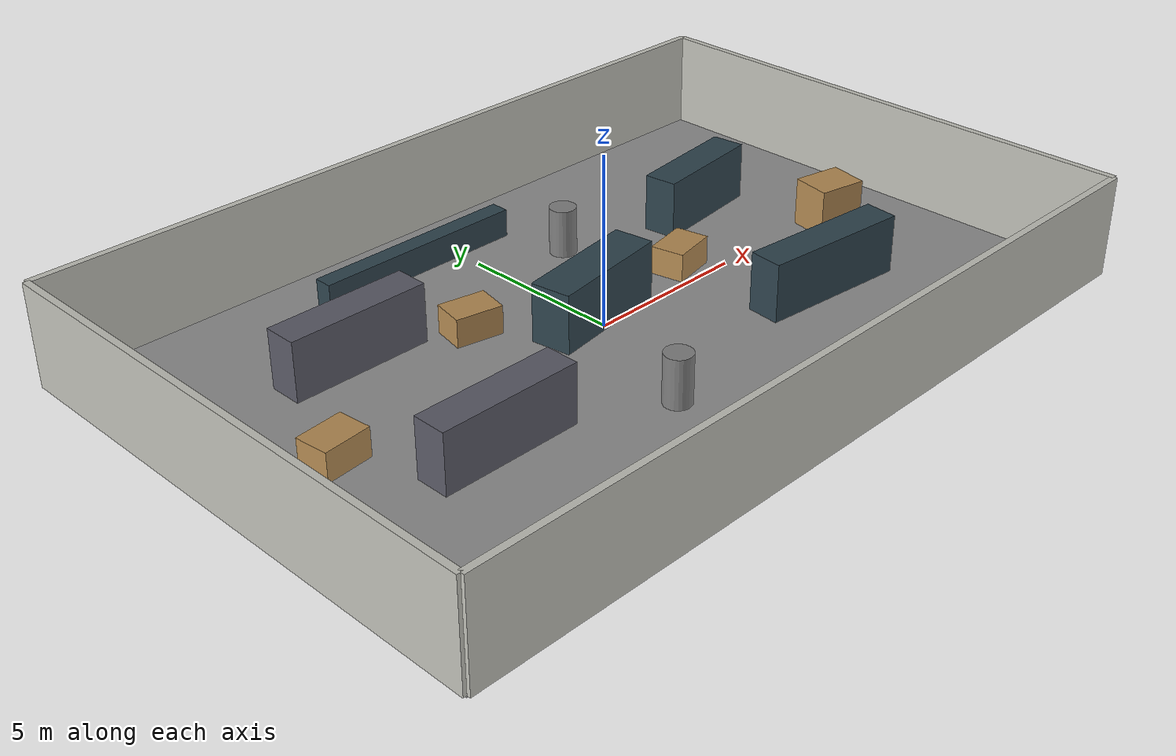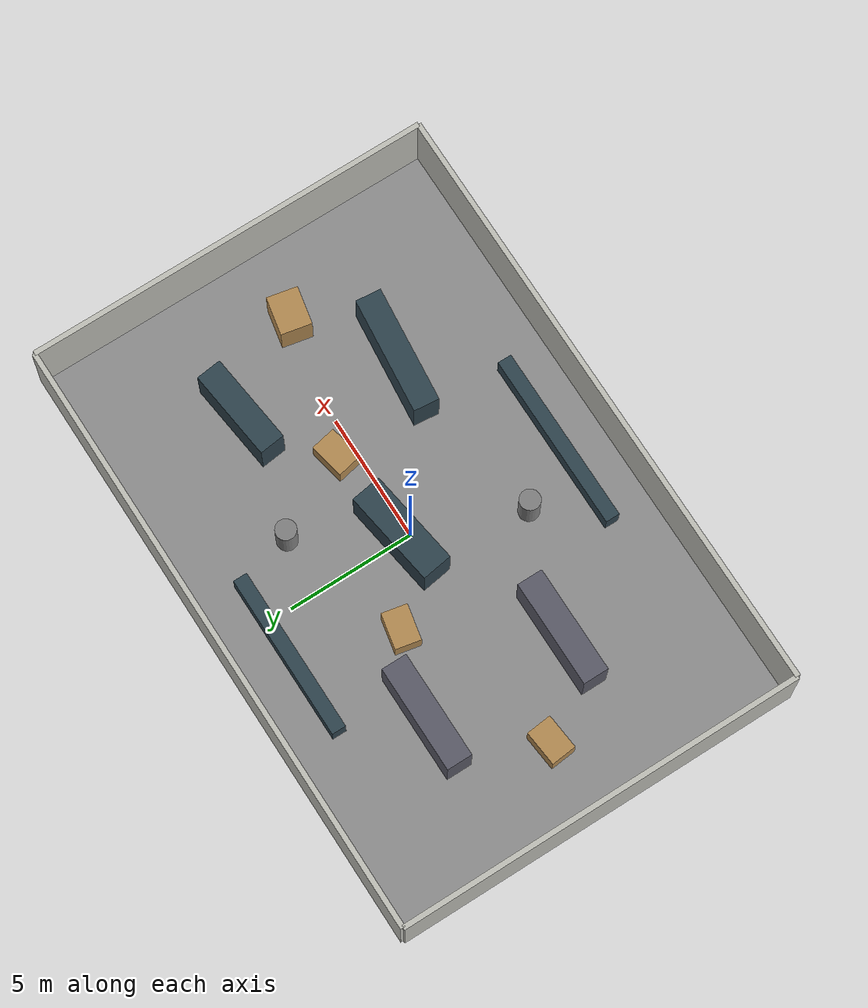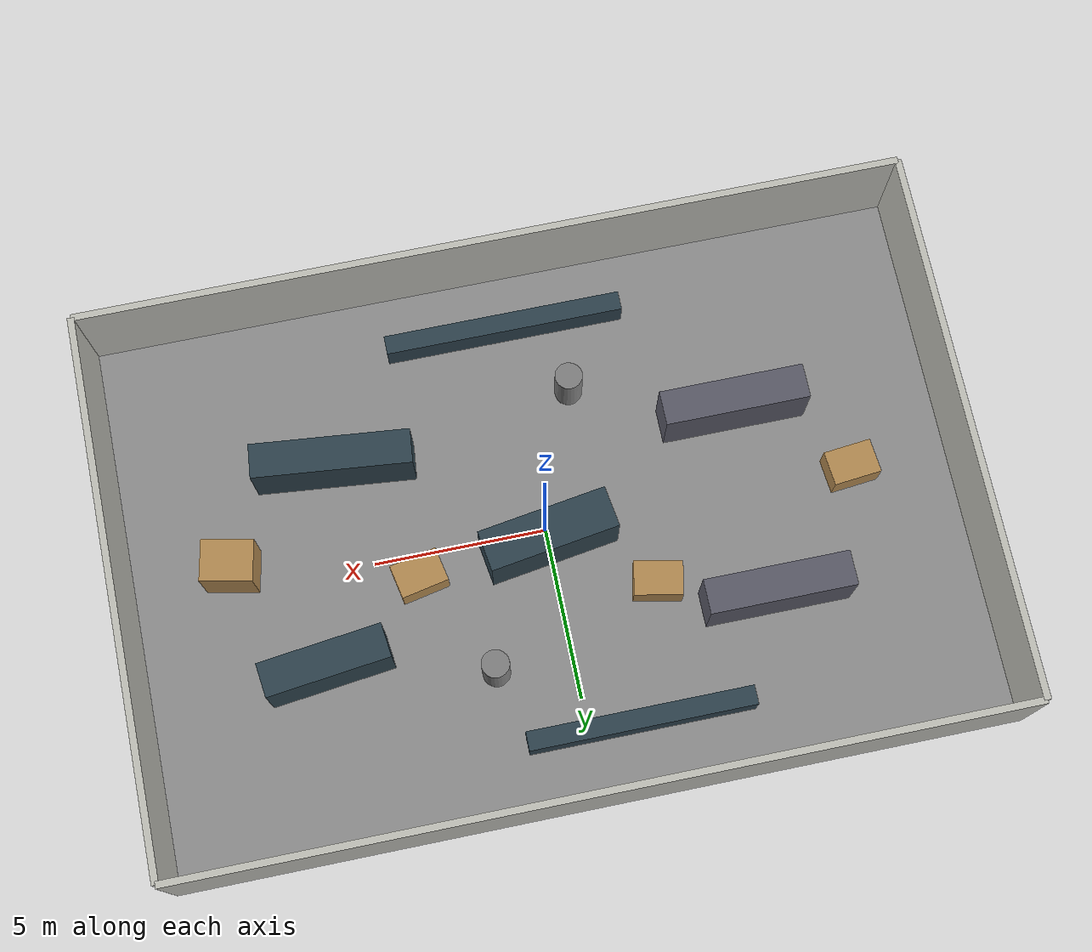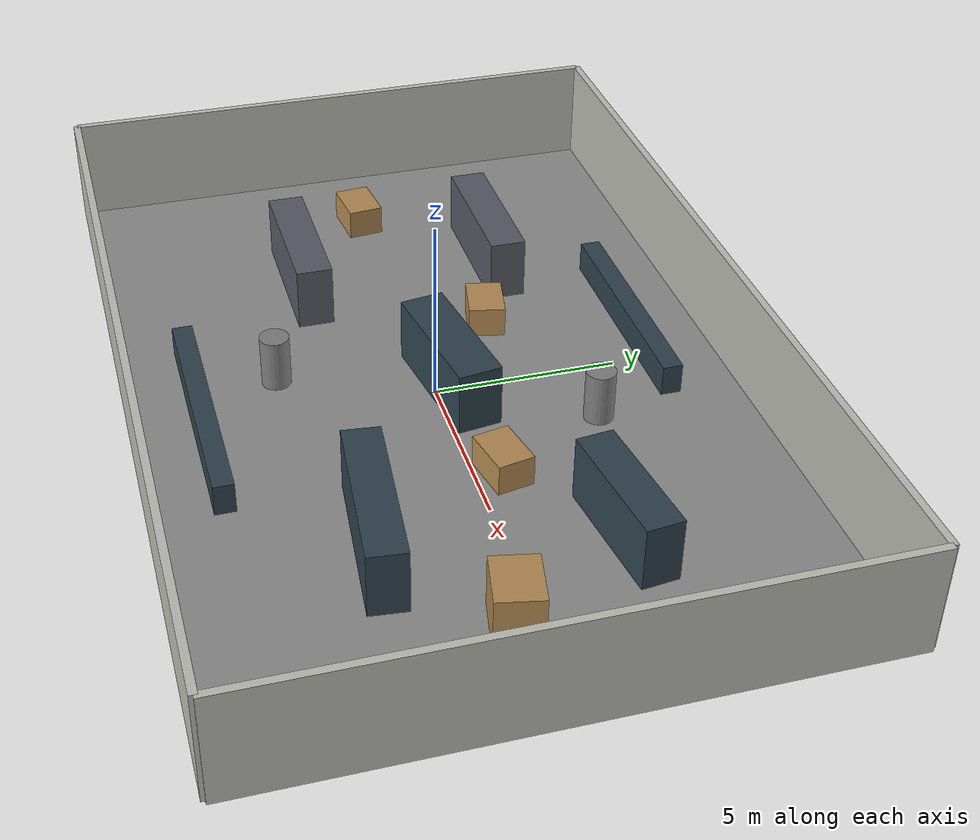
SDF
<?xml version="1.0" ?>
<sdf version="1.9">
  <world name="warehouse">
    <physics name="1ms" type="ode">
      <max_step_size>0.004</max_step_size>
      <real_time_factor>1.0</real_time_factor>
      <real_time_update_rate>250</real_time_update_rate>
    </physics>
    <gravity>0 0 -9.8</gravity>
    <magnetic_field>6e-06 2.3e-05 -4.2e-05</magnetic_field>
    <atmosphere type="adiabatic"/>

    <scene>
      <grid>false</grid>
      <ambient>0.4 0.4 0.4 1</ambient>
      <background>0.7 0.7 0.7 1</background>
      <shadows>true</shadows>
    </scene>

    <plugin
      filename="gz-sim-physics-system"
      name="gz::sim::systems::Physics">
    </plugin>
    <plugin
      filename="gz-sim-user-commands-system"
      name="gz::sim::systems::UserCommands">
    </plugin>
    <plugin
      filename="gz-sim-scene-broadcaster-system"
      name="gz::sim::systems::SceneBroadcaster">
    </plugin>
    <plugin
      filename="gz-sim-sensors-system"
      name="gz::sim::systems::Sensors">
      <render_engine>ogre2</render_engine>
    </plugin>

    <light name="sun" type="directional">
      <cast_shadows>true</cast_shadows>
      <pose>0 0 10 0 0 0</pose>
      <diffuse>0.8 0.8 0.75 1</diffuse>
      <specular>0.2 0.2 0.2 1</specular>
      <attenuation>
        <range>1000</range>
        <constant>0.9</constant>
        <linear>0.01</linear>
        <quadratic>0.001</quadratic>
      </attenuation>
      <direction>-0.5 0.2 -1</direction>
    </light>

    <spherical_coordinates>
      <surface_model>EARTH_WGS84</surface_model>
      <world_frame_orientation>ENU</world_frame_orientation>
      <latitude_deg>47.397971057728974</latitude_deg>
      <longitude_deg>8.546163739800146</longitude_deg>
      <elevation>0</elevation>
    </spherical_coordinates>

    <model name="warehouse_floor">
      <static>true</static>
      <link name="floor_link">
        <collision name="collision">
          <geometry>
            <box>
              <size>24 16 0.1</size>
            </box>
          </geometry>
        </collision>
        <visual name="visual">
          <geometry>
            <box>
              <size>24 16 0.1</size>
            </box>
          </geometry>
          <material>
            <ambient>0.45 0.45 0.45 1</ambient>
            <diffuse>0.55 0.55 0.55 1</diffuse>
          </material>
        </visual>
      </link>
    </model>

    <model name="north_wall">
      <static>true</static>
      <pose>0 8 1.5 0 0 0</pose>
      <link name="wall_link">
        <collision name="collision">
          <geometry>
            <box>
              <size>24 0.2 3</size>
            </box>
          </geometry>
        </collision>
        <visual name="visual">
          <geometry>
            <box>
              <size>24 0.2 3</size>
            </box>
          </geometry>
          <material>
            <ambient>0.65 0.65 0.62 1</ambient>
            <diffuse>0.75 0.75 0.72 1</diffuse>
          </material>
        </visual>
      </link>
    </model>

    <model name="south_wall">
      <static>true</static>
      <pose>0 -8 1.5 0 0 0</pose>
      <link name="wall_link">
        <collision name="collision">
          <geometry>
            <box>
              <size>24 0.2 3</size>
            </box>
          </geometry>
        </collision>
        <visual name="visual">
          <geometry>
            <box>
              <size>24 0.2 3</size>
            </box>
          </geometry>
          <material>
            <ambient>0.65 0.65 0.62 1</ambient>
            <diffuse>0.75 0.75 0.72 1</diffuse>
          </material>
        </visual>
      </link>
    </model>

    <model name="east_wall">
      <static>true</static>
      <pose>12 0 1.5 0 0 0</pose>
      <link name="wall_link">
        <collision name="collision">
          <geometry>
            <box>
              <size>0.2 16 3</size>
            </box>
          </geometry>
        </collision>
        <visual name="visual">
          <geometry>
            <box>
              <size>0.2 16 3</size>
            </box>
          </geometry>
          <material>
            <ambient>0.65 0.65 0.62 1</ambient>
            <diffuse>0.75 0.75 0.72 1</diffuse>
          </material>
        </visual>
      </link>
    </model>

    <model name="west_wall">
      <static>true</static>
      <pose>-12 0 1.5 0 0 0</pose>
      <link name="wall_link">
        <collision name="collision">
          <geometry>
            <box>
              <size>0.2 16 3</size>
            </box>
          </geometry>
        </collision>
        <visual name="visual">
          <geometry>
            <box>
              <size>0.2 16 3</size>
            </box>
          </geometry>
          <material>
            <ambient>0.65 0.65 0.62 1</ambient>
            <diffuse>0.75 0.75 0.72 1</diffuse>
          </material>
        </visual>
      </link>
    </model>

    <model name="shelf_left_rear">
      <static>true</static>
      <pose>-6 3.2 0.9 0 0 0</pose>
      <link name="shelf_link">
        <collision name="collision">
          <geometry>
            <box>
              <size>4.2 1.0 1.8</size>
            </box>
          </geometry>
        </collision>
        <visual name="visual">
          <geometry>
            <box>
              <size>4.2 1.0 1.8</size>
            </box>
          </geometry>
          <material>
            <ambient>0.25 0.25 0.28 1</ambient>
            <diffuse>0.35 0.35 0.40 1</diffuse>
          </material>
        </visual>
      </link>
    </model>

    <model name="shelf_left_front">
      <static>true</static>
      <pose>-6 -2.4 0.9 0 0 0</pose>
      <link name="shelf_link">
        <collision name="collision">
          <geometry>
            <box>
              <size>4.2 1.0 1.8</size>
            </box>
          </geometry>
        </collision>
        <visual name="visual">
          <geometry>
            <box>
              <size>4.2 1.0 1.8</size>
            </box>
          </geometry>
          <material>
            <ambient>0.25 0.25 0.28 1</ambient>
            <diffuse>0.35 0.35 0.40 1</diffuse>
          </material>
        </visual>
      </link>
    </model>

    <model name="round_column_a">
      <static>true</static>
      <pose>-1.5 -4.0 0.75 0 0 0</pose>
      <link name="pillar_link">
        <collision name="collision">
          <geometry>
            <cylinder>
              <radius>0.4</radius>
              <length>1.5</length>
            </cylinder>
          </geometry>
        </collision>
        <visual name="visual">
          <geometry>
            <cylinder>
              <radius>0.4</radius>
              <length>1.5</length>
            </cylinder>
          </geometry>
          <material>
            <ambient>0.40 0.40 0.40 1</ambient>
            <diffuse>0.50 0.50 0.50 1</diffuse>
          </material>
        </visual>
      </link>
    </model>

    <model name="round_column_b">
      <static>true</static>
      <pose>2.2 3.8 0.75 0 0 0</pose>
      <link name="pillar_link">
        <collision name="collision">
          <geometry>
            <cylinder>
              <radius>0.4</radius>
              <length>1.5</length>
            </cylinder>
          </geometry>
        </collision>
        <visual name="visual">
          <geometry>
            <cylinder>
              <radius>0.4</radius>
              <length>1.5</length>
            </cylinder>
          </geometry>
          <material>
            <ambient>0.40 0.40 0.40 1</ambient>
            <diffuse>0.50 0.50 0.50 1</diffuse>
          </material>
        </visual>
      </link>
    </model>

    <model name="goal_marker">
      <static>true</static>
      <pose>10 -6 0.02 0 0 0</pose>
      <link name="marker_link">
        <visual name="visual">
          <geometry>
            <cylinder>
              <radius>0.4</radius>
              <length>0.03</length>
            </cylinder>
          </geometry>
          <material>
            <ambient>0.9 0.1 0.1 1</ambient>
            <diffuse>1.0 0.2 0.2 1</diffuse>
          </material>
        </visual>
      </link>
    </model>

    <model name="shelf_center">
      <static>true</static>
      <pose>0 0.4 0.9 0 0 0.15</pose>
      <link name="rack_link">
        <collision name="collision">
          <geometry>
            <box>
              <size>3.8 1.2 1.8</size>
            </box>
          </geometry>
        </collision>
        <visual name="visual">
          <geometry>
            <box>
              <size>3.8 1.2 1.8</size>
            </box>
          </geometry>
          <material>
            <ambient>0.12 0.18 0.22 1</ambient>
            <diffuse>0.18 0.26 0.30 1</diffuse>
          </material>
        </visual>
      </link>
    </model>

    <model name="shelf_right_front">
      <static>true</static>
      <pose>5.6 -3.0 0.9 0 0 -0.1</pose>
      <link name="rack_link">
        <collision name="collision">
          <geometry>
            <box>
              <size>4.6 1.0 1.8</size>
            </box>
          </geometry>
        </collision>
        <visual name="visual">
          <geometry>
            <box>
              <size>4.6 1.0 1.8</size>
            </box>
          </geometry>
          <material>
            <ambient>0.12 0.18 0.22 1</ambient>
            <diffuse>0.18 0.26 0.30 1</diffuse>
          </material>
        </visual>
      </link>
    </model>

    <model name="shelf_right_rear">
      <static>true</static>
      <pose>6.8 2.8 0.9 0 0 0.12</pose>
      <link name="rack_link">
        <collision name="collision">
          <geometry>
            <box>
              <size>3.6 1.0 1.8</size>
            </box>
          </geometry>
        </collision>
        <visual name="visual">
          <geometry>
            <box>
              <size>3.6 1.0 1.8</size>
            </box>
          </geometry>
          <material>
            <ambient>0.12 0.18 0.22 1</ambient>
            <diffuse>0.18 0.26 0.30 1</diffuse>
          </material>
        </visual>
      </link>
    </model>

    <model name="long_barrier_front">
      <static>true</static>
      <pose>0 -6.2 0.45 0 0 0</pose>
      <link name="rack_link">
        <collision name="collision">
          <geometry>
            <box>
              <size>7.0 0.55 0.9</size>
            </box>
          </geometry>
        </collision>
        <visual name="visual">
          <geometry>
            <box>
              <size>7.0 0.55 0.9</size>
            </box>
          </geometry>
          <material>
            <ambient>0.12 0.18 0.22 1</ambient>
            <diffuse>0.18 0.26 0.30 1</diffuse>
          </material>
        </visual>
      </link>
    </model>

    <model name="long_barrier_rear">
      <static>true</static>
      <pose>-1.5 6.0 0.45 0 0 0</pose>
      <link name="rack_link">
        <collision name="collision">
          <geometry>
            <box>
              <size>6.5 0.55 0.9</size>
            </box>
          </geometry>
        </collision>
        <visual name="visual">
          <geometry>
            <box>
              <size>6.5 0.55 0.9</size>
            </box>
          </geometry>
          <material>
            <ambient>0.12 0.18 0.22 1</ambient>
            <diffuse>0.18 0.26 0.30 1</diffuse>
          </material>
        </visual>
      </link>
    </model>

    <model name="pallet_a">
      <static>true</static>
      <pose>-9.0 0.0 0.45 0 0 0.1</pose>
      <link name="pallet_link">
        <collision name="collision">
          <geometry>
            <box>
              <size>1.4 1.0 0.9</size>
            </box>
          </geometry>
        </collision>
        <visual name="visual">
          <geometry>
            <box>
              <size>1.4 1.0 0.9</size>
            </box>
          </geometry>
          <material>
            <ambient>0.55 0.42 0.24 1</ambient>
            <diffuse>0.70 0.54 0.32 1</diffuse>
          </material>
        </visual>
      </link>
    </model>

    <model name="pallet_b">
      <static>true</static>
      <pose>-2.8 2.2 0.45 0 0 -0.2</pose>
      <link name="pallet_link">
        <collision name="collision">
          <geometry>
            <box>
              <size>1.4 1.0 0.9</size>
            </box>
          </geometry>
        </collision>
        <visual name="visual">
          <geometry>
            <box>
              <size>1.4 1.0 0.9</size>
            </box>
          </geometry>
          <material>
            <ambient>0.55 0.42 0.24 1</ambient>
            <diffuse>0.70 0.54 0.32 1</diffuse>
          </material>
        </visual>
      </link>
    </model>

    <model name="pallet_c">
      <static>true</static>
      <pose>3.8 0.7 0.45 0 0 0.2</pose>
      <link name="pallet_link">
        <collision name="collision">
          <geometry>
            <box>
              <size>1.4 1.0 0.9</size>
            </box>
          </geometry>
        </collision>
        <visual name="visual">
          <geometry>
            <box>
              <size>1.4 1.0 0.9</size>
            </box>
          </geometry>
          <material>
            <ambient>0.55 0.42 0.24 1</ambient>
            <diffuse>0.70 0.54 0.32 1</diffuse>
          </material>
        </visual>
      </link>
    </model>

    <model name="pallet_d">
      <static>true</static>
      <pose>9.0 -0.6 0.75 0 0 -0.2</pose>
      <link name="pallet_link">
        <collision name="collision">
          <geometry>
            <box>
              <size>1.5 1.2 1.5</size>
            </box>
          </geometry>
        </collision>
        <visual name="visual">
          <geometry>
            <box>
              <size>1.5 1.2 1.5</size>
            </box>
          </geometry>
          <material>
            <ambient>0.55 0.42 0.24 1</ambient>
            <diffuse>0.70 0.54 0.32 1</diffuse>
          </material>
        </visual>
      </link>
    </model>

    <model name="mapping_start_marker">
      <static>true</static>
      <pose>0 -5.5 0.02 0 0 0</pose>
      <link name="marker_link">
        <visual name="visual">
          <geometry>
            <cylinder>
              <radius>0.5</radius>
              <length>0.02</length>
            </cylinder>
          </geometry>
          <material>
            <ambient>0.05 0.45 0.9 1</ambient>
            <diffuse>0.05 0.55 1.0 1</diffuse>
          </material>
        </visual>
      </link>
    </model>
  </world>
</sdf>
